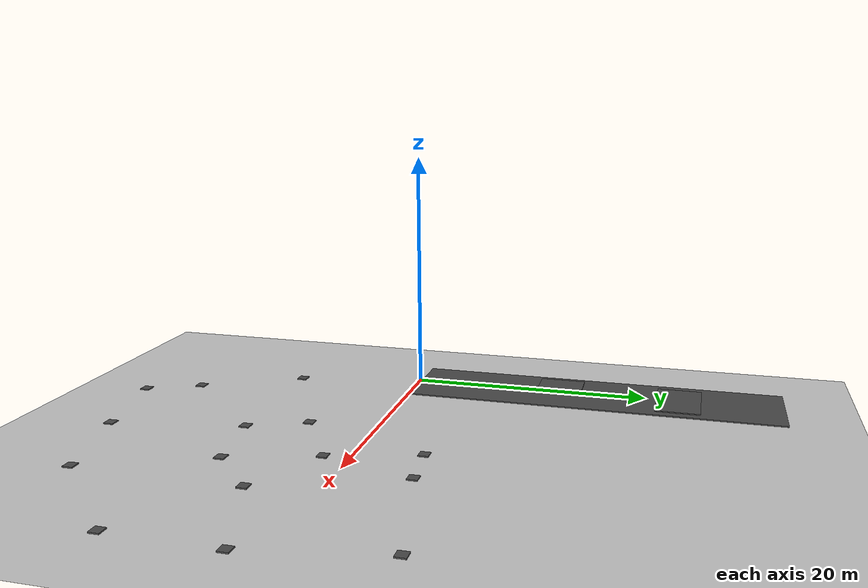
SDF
<sdf version="1.6">
 <world name="default">
  <model name="ground_plane">
   <static>1</static>
   <link name="link">
    <collision name="collision">
     <geometry><plane><normal>0 0 1</normal><size>100 100</size></plane></geometry>
     <surface><friction><ode><mu>100</mu><mu2>50</mu2></ode></friction></surface>
    </collision>
    <visual name="visual">
     <cast_shadows>0</cast_shadows>
     <geometry><plane><normal>0 0 1</normal><size>100 100</size></plane></geometry>
     <material>
      <script><uri>file://media/materials/scripts/gazebo.material</uri><name>Gazebo/Grey</name></script>
     </material>
    </visual>
   </link>
  </model>
  <model name="asphalt_plane_update3">
   <link name="link">
    <inertial>
     <inertia><ixx>0</ixx><ixy>0</ixy><ixz>0</ixz><iyy>0</iyy><iyz>0</iyz><izz>0</izz></inertia>
     <mass>0</mass>
    </inertial>
    <visual name="visual">
     <cast_shadows>0</cast_shadows>
     <geometry><box><size>31.1902 7.25075 0.1</size></box></geometry>
     <material>
      <script>
       <uri>model://asphalt_plane/materials/scripts</uri>
       <uri>model://asphalt_plane/materials/textures</uri>
       <name>vrc/asphalt</name>
      </script>
      <shader type="pixel"/>
     </material>
    </visual>
    <collision name="collision">
     <geometry><box><size>31.1902 7.25075 0.1</size></box></geometry>
     <surface>
      <friction>
       <ode><mu>1</mu><mu2>1</mu2><fdir1>0 0 0</fdir1><slip1>0</slip1><slip2>0</slip2></ode>
       <torsional>
        <coefficient>1</coefficient>
        <patch_radius>0</patch_radius>
        <surface_radius>0</surface_radius>
        <use_patch_radius>1</use_patch_radius>
        <ode><slip>0</slip></ode>
       </torsional>
      </friction>
      <bounce><restitution_coefficient>0</restitution_coefficient><threshold>1e+06</threshold></bounce>
      <contact>
       <collide_without_contact>0</collide_without_contact>
       <collide_without_contact_bitmask>1</collide_without_contact_bitmask>
       <collide_bitmask>1</collide_bitmask>
       <ode>
        <soft_cfm>0</soft_cfm>
        <soft_erp>0.2</soft_erp>
        <kp>1e+13</kp>
        <kd>1</kd>
        <max_vel>0.01</max_vel>
        <min_depth>0</min_depth>
       </ode>
       <bullet>
        <split_impulse>1</split_impulse>
        <split_impulse_penetration_threshold>-0.01</split_impulse_penetration_threshold>
        <soft_cfm>0</soft_cfm>
        <soft_erp>0.2</soft_erp>
        <kp>1e+13</kp>
        <kd>1</kd>
       </bullet>
      </contact>
     </surface>
    </collision>
   </link>
   <static>1</static>
   <pose>0.251899 15.8038 0 0.004648 -0.000195 -1.57</pose>
  </model>
  <model name="asphalt_plane_updateblue_clone_clone_clone">
   <link name="link">
    <inertial>
     <inertia><ixx>0</ixx><ixy>0</ixy><ixz>0</ixz><iyy>0</iyy><iyz>0</iyz><izz>0</izz></inertia>
     <mass>0</mass>
    </inertial>
    <visual name="visual">
     <cast_shadows>0</cast_shadows>
     <geometry><box><size>2.93785 3.83992 0.1</size></box></geometry>
     <material>
      <script>
       <uri>model://asphalt_plane/materials/scripts</uri>
       <uri>model://asphalt_plane/materials/textures</uri>
       <name>vrc/asphalt</name>
      </script>
      <shader type="pixel"><normal_map>__default__</normal_map></shader>
      <ambient>0.776 0.769 0.765 1</ambient>
      <diffuse>0.773 0.769 0.765 1</diffuse>
      <specular>0.773 0.769 0.765 1</specular>
      <emissive>0.773 0.769 0.765 1</emissive>
     </material>
    </visual>
    <collision name="collision">
     <geometry><box><size>2.93785 3.83992 0.1</size></box></geometry>
     <surface>
      <friction>
       <ode><mu>1</mu><mu2>1</mu2><fdir1>0 0 0</fdir1><slip1>0</slip1><slip2>0</slip2></ode>
       <torsional>
        <coefficient>1</coefficient>
        <patch_radius>0</patch_radius>
        <surface_radius>0</surface_radius>
        <use_patch_radius>1</use_patch_radius>
        <ode><slip>0</slip></ode>
       </torsional>
      </friction>
      <bounce><restitution_coefficient>0</restitution_coefficient><threshold>1e+06</threshold></bounce>
      <contact>
       <collide_without_contact>0</collide_without_contact>
       <collide_without_contact_bitmask>1</collide_without_contact_bitmask>
       <collide_bitmask>1</collide_bitmask>
       <ode>
        <soft_cfm>0</soft_cfm>
        <soft_erp>0.2</soft_erp>
        <kp>1e+13</kp>
        <kd>1</kd>
        <max_vel>0.01</max_vel>
        <min_depth>0</min_depth>
       </ode>
       <bullet>
        <split_impulse>1</split_impulse>
        <split_impulse_penetration_threshold>-0.01</split_impulse_penetration_threshold>
        <soft_cfm>0</soft_cfm>
        <soft_erp>0.2</soft_erp>
        <kp>1e+13</kp>
        <kd>1</kd>
       </bullet>
      </contact>
     </surface>
    </collision>
   </link>
   <static>1</static>
   <pose>-1.21261 12.6004 0.1 0 -0 0</pose>
  </model>
  <model name="asphalt_plane_updateblue_clone_clone_clone_clone">
   <link name="link">
    <inertial>
     <inertia><ixx>0</ixx><ixy>0</ixy><ixz>0</ixz><iyy>0</iyy><iyz>0</iyz><izz>0</izz></inertia>
     <mass>0</mass>
    </inertial>
    <visual name="visual">
     <cast_shadows>0</cast_shadows>
     <geometry><box><size>3.69865 5.53696 0.1</size></box></geometry>
     <material>
      <script>
       <uri>model://asphalt_plane/materials/scripts</uri>
       <uri>model://asphalt_plane/materials/textures</uri>
       <name>vrc/asphalt</name>
      </script>
      <shader type="pixel"><normal_map>__default__</normal_map></shader>
      <ambient>0.776 0.769 0.765 1</ambient>
      <diffuse>0.773 0.769 0.765 1</diffuse>
      <specular>0.773 0.769 0.765 1</specular>
      <emissive>0.773 0.769 0.765 1</emissive>
     </material>
    </visual>
    <collision name="collision">
     <geometry><box><size>3.69865 5.53696 0.1</size></box></geometry>
     <surface>
      <friction>
       <ode><mu>1</mu><mu2>1</mu2><fdir1>0 0 0</fdir1><slip1>0</slip1><slip2>0</slip2></ode>
       <torsional>
        <coefficient>1</coefficient>
        <patch_radius>0</patch_radius>
        <surface_radius>0</surface_radius>
        <use_patch_radius>1</use_patch_radius>
        <ode><slip>0</slip></ode>
       </torsional>
      </friction>
      <bounce><restitution_coefficient>0</restitution_coefficient><threshold>1e+06</threshold></bounce>
      <contact>
       <collide_without_contact>0</collide_without_contact>
       <collide_without_contact_bitmask>1</collide_without_contact_bitmask>
       <collide_bitmask>1</collide_bitmask>
       <ode>
        <soft_cfm>0</soft_cfm>
        <soft_erp>0.2</soft_erp>
        <kp>1e+13</kp>
        <kd>1</kd>
        <max_vel>0.01</max_vel>
        <min_depth>0</min_depth>
       </ode>
       <bullet>
        <split_impulse>1</split_impulse>
        <split_impulse_penetration_threshold>-0.01</split_impulse_penetration_threshold>
        <soft_cfm>0</soft_cfm>
        <soft_erp>0.2</soft_erp>
        <kp>1e+13</kp>
        <kd>1</kd>
       </bullet>
      </contact>
     </surface>
    </collision>
   </link>
   <static>1</static>
   <pose>0.337939 22.7775 0.1 0 0 -1.57683</pose>
  </model>
  <model name="asphalt_plane_updateblue_clone_clone_10">
   <link name="link">
    <inertial>
     <inertia><ixx>0</ixx><ixy>0</ixy><ixz>0</ixz><iyy>0</iyy><iyz>0</iyz><izz>0</izz></inertia>
     <mass>0</mass>
    </inertial>
    <visual name="visual">
     <cast_shadows>0</cast_shadows>
     <geometry><box><size>0.821257 0.814438 0.1</size></box></geometry>
     <material>
      <script>
       <uri>model://asphalt_plane/materials/scripts</uri>
       <uri>model://asphalt_plane/materials/textures</uri>
       <name>vrc/asphalt</name>
      </script>
      <shader type="pixel"><normal_map>__default__</normal_map></shader>
      <ambient>0 1 1 1</ambient>
      <diffuse>0 1 1 1</diffuse>
      <specular>0 1 1 1</specular>
      <emissive>0 0 0 1</emissive>
     </material>
    </visual>
    <collision name="collision">
     <geometry><box><size>0.821257 0.814438 0.1</size></box></geometry>
     <surface>
      <friction>
       <ode><mu>1</mu><mu2>1</mu2><fdir1>0 0 0</fdir1><slip1>0</slip1><slip2>0</slip2></ode>
       <torsional>
        <coefficient>1</coefficient>
        <patch_radius>0</patch_radius>
        <surface_radius>0</surface_radius>
        <use_patch_radius>1</use_patch_radius>
        <ode><slip>0</slip></ode>
       </torsional>
      </friction>
      <bounce><restitution_coefficient>0</restitution_coefficient><threshold>1e+06</threshold></bounce>
      <contact>
       <collide_without_contact>0</collide_without_contact>
       <collide_without_contact_bitmask>1</collide_without_contact_bitmask>
       <collide_bitmask>1</collide_bitmask>
       <ode>
        <soft_cfm>0</soft_cfm>
        <soft_erp>0.2</soft_erp>
        <kp>1e+13</kp>
        <kd>1</kd>
        <max_vel>0.01</max_vel>
        <min_depth>0</min_depth>
       </ode>
       <bullet>
        <split_impulse>1</split_impulse>
        <split_impulse_penetration_threshold>-0.01</split_impulse_penetration_threshold>
        <soft_cfm>0</soft_cfm>
        <soft_erp>0.2</soft_erp>
        <kp>1e+13</kp>
        <kd>1</kd>
       </bullet>
      </contact>
     </surface>
    </collision>
   </link>
   <static>1</static>
   <pose>6.21493 -18.4834 0 0 -0 0</pose>
  </model>
  <model name="asphalt_plane_updateblue_clone_clone_11">
   <link name="link">
    <inertial>
     <inertia><ixx>0</ixx><ixy>0</ixy><ixz>0</ixz><iyy>0</iyy><iyz>0</iyz><izz>0</izz></inertia>
     <mass>0</mass>
    </inertial>
    <visual name="visual">
     <cast_shadows>0</cast_shadows>
     <geometry><box><size>0.821257 0.814438 0.1</size></box></geometry>
     <material>
      <script>
       <uri>model://asphalt_plane/materials/scripts</uri>
       <uri>model://asphalt_plane/materials/textures</uri>
       <name>vrc/asphalt</name>
      </script>
      <shader type="pixel"><normal_map>__default__</normal_map></shader>
      <ambient>0 1 1 1</ambient>
      <diffuse>0 1 1 1</diffuse>
      <specular>0 1 1 1</specular>
      <emissive>0 0 0 1</emissive>
     </material>
    </visual>
    <collision name="collision">
     <geometry><box><size>0.821257 0.814438 0.1</size></box></geometry>
     <surface>
      <friction>
       <ode><mu>1</mu><mu2>1</mu2><fdir1>0 0 0</fdir1><slip1>0</slip1><slip2>0</slip2></ode>
       <torsional>
        <coefficient>1</coefficient>
        <patch_radius>0</patch_radius>
        <surface_radius>0</surface_radius>
        <use_patch_radius>1</use_patch_radius>
        <ode><slip>0</slip></ode>
       </torsional>
      </friction>
      <bounce><restitution_coefficient>0</restitution_coefficient><threshold>1e+06</threshold></bounce>
      <contact>
       <collide_without_contact>0</collide_without_contact>
       <collide_without_contact_bitmask>1</collide_without_contact_bitmask>
       <collide_bitmask>1</collide_bitmask>
       <ode>
        <soft_cfm>0</soft_cfm>
        <soft_erp>0.2</soft_erp>
        <kp>1e+13</kp>
        <kd>1</kd>
        <max_vel>0.01</max_vel>
        <min_depth>0</min_depth>
       </ode>
       <bullet>
        <split_impulse>1</split_impulse>
        <split_impulse_penetration_threshold>-0.01</split_impulse_penetration_threshold>
        <soft_cfm>0</soft_cfm>
        <soft_erp>0.2</soft_erp>
        <kp>1e+13</kp>
        <kd>1</kd>
       </bullet>
      </contact>
     </surface>
    </collision>
   </link>
   <static>1</static>
   <pose>8.19247 -22.7764 0 0 -0 0</pose>
  </model>
  <model name="asphalt_plane_updateblue_clone_clone_12">
   <link name="link">
    <inertial>
     <inertia><ixx>0</ixx><ixy>0</ixy><ixz>0</ixz><iyy>0</iyy><iyz>0</iyz><izz>0</izz></inertia>
     <mass>0</mass>
    </inertial>
    <visual name="visual">
     <cast_shadows>0</cast_shadows>
     <geometry><box><size>0.821257 0.814438 0.1</size></box></geometry>
     <material>
      <script>
       <uri>model://asphalt_plane/materials/scripts</uri>
       <uri>model://asphalt_plane/materials/textures</uri>
       <name>vrc/asphalt</name>
      </script>
      <shader type="pixel"><normal_map>__default__</normal_map></shader>
      <ambient>0 1 1 1</ambient>
      <diffuse>0 1 1 1</diffuse>
      <specular>0 1 1 1</specular>
      <emissive>0 0 0 1</emissive>
     </material>
    </visual>
    <collision name="collision">
     <geometry><box><size>0.821257 0.814438 0.1</size></box></geometry>
     <surface>
      <friction>
       <ode><mu>1</mu><mu2>1</mu2><fdir1>0 0 0</fdir1><slip1>0</slip1><slip2>0</slip2></ode>
       <torsional>
        <coefficient>1</coefficient>
        <patch_radius>0</patch_radius>
        <surface_radius>0</surface_radius>
        <use_patch_radius>1</use_patch_radius>
        <ode><slip>0</slip></ode>
       </torsional>
      </friction>
      <bounce><restitution_coefficient>0</restitution_coefficient><threshold>1e+06</threshold></bounce>
      <contact>
       <collide_without_contact>0</collide_without_contact>
       <collide_without_contact_bitmask>1</collide_without_contact_bitmask>
       <collide_bitmask>1</collide_bitmask>
       <ode>
        <soft_cfm>0</soft_cfm>
        <soft_erp>0.2</soft_erp>
        <kp>1e+13</kp>
        <kd>1</kd>
        <max_vel>0.01</max_vel>
        <min_depth>0</min_depth>
       </ode>
       <bullet>
        <split_impulse>1</split_impulse>
        <split_impulse_penetration_threshold>-0.01</split_impulse_penetration_threshold>
        <soft_cfm>0</soft_cfm>
        <soft_erp>0.2</soft_erp>
        <kp>1e+13</kp>
        <kd>1</kd>
       </bullet>
      </contact>
     </surface>
    </collision>
   </link>
   <static>1</static>
   <pose>16.1417 -21.0274 0 0 -0 0</pose>
  </model>
  <model name="asphalt_plane_updateblue_clone_clone_13">
   <link name="link">
    <inertial>
     <inertia><ixx>0</ixx><ixy>0</ixy><ixz>0</ixz><iyy>0</iyy><iyz>0</iyz><izz>0</izz></inertia>
     <mass>0</mass>
    </inertial>
    <visual name="visual">
     <cast_shadows>0</cast_shadows>
     <geometry><box><size>0.821257 0.814438 0.1</size></box></geometry>
     <material>
      <script>
       <uri>model://asphalt_plane/materials/scripts</uri>
       <uri>model://asphalt_plane/materials/textures</uri>
       <name>vrc/asphalt</name>
      </script>
      <shader type="pixel"><normal_map>__default__</normal_map></shader>
      <ambient>0 1 1 1</ambient>
      <diffuse>0 1 1 1</diffuse>
      <specular>0 1 1 1</specular>
      <emissive>0 0 0 1</emissive>
     </material>
    </visual>
    <collision name="collision">
     <geometry><box><size>0.821257 0.814438 0.1</size></box></geometry>
     <surface>
      <friction>
       <ode><mu>1</mu><mu2>1</mu2><fdir1>0 0 0</fdir1><slip1>0</slip1><slip2>0</slip2></ode>
       <torsional>
        <coefficient>1</coefficient>
        <patch_radius>0</patch_radius>
        <surface_radius>0</surface_radius>
        <use_patch_radius>1</use_patch_radius>
        <ode><slip>0</slip></ode>
       </torsional>
      </friction>
      <bounce><restitution_coefficient>0</restitution_coefficient><threshold>1e+06</threshold></bounce>
      <contact>
       <collide_without_contact>0</collide_without_contact>
       <collide_without_contact_bitmask>1</collide_without_contact_bitmask>
       <collide_bitmask>1</collide_bitmask>
       <ode>
        <soft_cfm>0</soft_cfm>
        <soft_erp>0.2</soft_erp>
        <kp>1e+13</kp>
        <kd>1</kd>
        <max_vel>0.01</max_vel>
        <min_depth>0</min_depth>
       </ode>
       <bullet>
        <split_impulse>1</split_impulse>
        <split_impulse_penetration_threshold>-0.01</split_impulse_penetration_threshold>
        <soft_cfm>0</soft_cfm>
        <soft_erp>0.2</soft_erp>
        <kp>1e+13</kp>
        <kd>1</kd>
       </bullet>
      </contact>
     </surface>
    </collision>
   </link>
   <static>1</static>
   <pose>20.1961 -9.18743 0 0 -0 0</pose>
  </model>
  <model name="asphalt_plane_updateblue_clone_clone_14">
   <link name="link">
    <inertial>
     <inertia><ixx>0</ixx><ixy>0</ixy><ixz>0</ixz><iyy>0</iyy><iyz>0</iyz><izz>0</izz></inertia>
     <mass>0</mass>
    </inertial>
    <visual name="visual">
     <cast_shadows>0</cast_shadows>
     <geometry><box><size>0.821257 0.814438 0.1</size></box></geometry>
     <material>
      <script>
       <uri>model://asphalt_plane/materials/scripts</uri>
       <uri>model://asphalt_plane/materials/textures</uri>
       <name>vrc/asphalt</name>
      </script>
      <shader type="pixel"><normal_map>__default__</normal_map></shader>
      <ambient>0 1 1 1</ambient>
      <diffuse>0 1 1 1</diffuse>
      <specular>0 1 1 1</specular>
      <emissive>0 0 0 1</emissive>
     </material>
    </visual>
    <collision name="collision">
     <geometry><box><size>0.821257 0.814438 0.1</size></box></geometry>
     <surface>
      <friction>
       <ode><mu>1</mu><mu2>1</mu2><fdir1>0 0 0</fdir1><slip1>0</slip1><slip2>0</slip2></ode>
       <torsional>
        <coefficient>1</coefficient>
        <patch_radius>0</patch_radius>
        <surface_radius>0</surface_radius>
        <use_patch_radius>1</use_patch_radius>
        <ode><slip>0</slip></ode>
       </torsional>
      </friction>
      <bounce><restitution_coefficient>0</restitution_coefficient><threshold>1e+06</threshold></bounce>
      <contact>
       <collide_without_contact>0</collide_without_contact>
       <collide_without_contact_bitmask>1</collide_without_contact_bitmask>
       <collide_bitmask>1</collide_bitmask>
       <ode>
        <soft_cfm>0</soft_cfm>
        <soft_erp>0.2</soft_erp>
        <kp>1e+13</kp>
        <kd>1</kd>
        <max_vel>0.01</max_vel>
        <min_depth>0</min_depth>
       </ode>
       <bullet>
        <split_impulse>1</split_impulse>
        <split_impulse_penetration_threshold>-0.01</split_impulse_penetration_threshold>
        <soft_cfm>0</soft_cfm>
        <soft_erp>0.2</soft_erp>
        <kp>1e+13</kp>
        <kd>1</kd>
       </bullet>
      </contact>
     </surface>
    </collision>
   </link>
   <static>1</static>
   <pose>16.1083 5.03897 0 0 -0 0</pose>
  </model>
  <model name="asphalt_plane_updateblue_clone_clone_15">
   <link name="link">
    <inertial>
     <inertia><ixx>0</ixx><ixy>0</ixy><ixz>0</ixz><iyy>0</iyy><iyz>0</iyz><izz>0</izz></inertia>
     <mass>0</mass>
    </inertial>
    <visual name="visual">
     <cast_shadows>0</cast_shadows>
     <geometry><box><size>0.821257 0.814438 0.1</size></box></geometry>
     <material>
      <script>
       <uri>model://asphalt_plane/materials/scripts</uri>
       <uri>model://asphalt_plane/materials/textures</uri>
       <name>vrc/asphalt</name>
      </script>
      <shader type="pixel"><normal_map>__default__</normal_map></shader>
      <ambient>0 1 1 1</ambient>
      <diffuse>0 1 1 1</diffuse>
      <specular>0 1 1 1</specular>
      <emissive>0 0 0 1</emissive>
     </material>
    </visual>
    <collision name="collision">
     <geometry><box><size>0.821257 0.814438 0.1</size></box></geometry>
     <surface>
      <friction>
       <ode><mu>1</mu><mu2>1</mu2><fdir1>0 0 0</fdir1><slip1>0</slip1><slip2>0</slip2></ode>
       <torsional>
        <coefficient>1</coefficient>
        <patch_radius>0</patch_radius>
        <surface_radius>0</surface_radius>
        <use_patch_radius>1</use_patch_radius>
        <ode><slip>0</slip></ode>
       </torsional>
      </friction>
      <bounce><restitution_coefficient>0</restitution_coefficient><threshold>1e+06</threshold></bounce>
      <contact>
       <collide_without_contact>0</collide_without_contact>
       <collide_without_contact_bitmask>1</collide_without_contact_bitmask>
       <collide_bitmask>1</collide_bitmask>
       <ode>
        <soft_cfm>0</soft_cfm>
        <soft_erp>0.2</soft_erp>
        <kp>1e+13</kp>
        <kd>1</kd>
        <max_vel>0.01</max_vel>
        <min_depth>0</min_depth>
       </ode>
       <bullet>
        <split_impulse>1</split_impulse>
        <split_impulse_penetration_threshold>-0.01</split_impulse_penetration_threshold>
        <soft_cfm>0</soft_cfm>
        <soft_erp>0.2</soft_erp>
        <kp>1e+13</kp>
        <kd>1</kd>
       </bullet>
      </contact>
     </surface>
    </collision>
   </link>
   <static>1</static>
   <pose>20.1704 5.43893 0 0 -0 0</pose>
  </model>
  <model name="asphalt_plane_updateblue_clone_clone_16">
   <link name="link">
    <inertial>
     <inertia><ixx>0</ixx><ixy>0</ixy><ixz>0</ixz><iyy>0</iyy><iyz>0</iyz><izz>0</izz></inertia>
     <mass>0</mass>
    </inertial>
    <visual name="visual">
     <cast_shadows>0</cast_shadows>
     <geometry><box><size>0.821257 0.814438 0.1</size></box></geometry>
     <material>
      <script>
       <uri>model://asphalt_plane/materials/scripts</uri>
       <uri>model://asphalt_plane/materials/textures</uri>
       <name>vrc/asphalt</name>
      </script>
      <shader type="pixel"><normal_map>__default__</normal_map></shader>
      <ambient>0 1 1 1</ambient>
      <diffuse>0 1 1 1</diffuse>
      <specular>0 1 1 1</specular>
      <emissive>0 0 0 1</emissive>
     </material>
    </visual>
    <collision name="collision">
     <geometry><box><size>0.821257 0.814438 0.1</size></box></geometry>
     <surface>
      <friction>
       <ode><mu>1</mu><mu2>1</mu2><fdir1>0 0 0</fdir1><slip1>0</slip1><slip2>0</slip2></ode>
       <torsional>
        <coefficient>1</coefficient>
        <patch_radius>0</patch_radius>
        <surface_radius>0</surface_radius>
        <use_patch_radius>1</use_patch_radius>
        <ode><slip>0</slip></ode>
       </torsional>
      </friction>
      <bounce><restitution_coefficient>0</restitution_coefficient><threshold>1e+06</threshold></bounce>
      <contact>
       <collide_without_contact>0</collide_without_contact>
       <collide_without_contact_bitmask>1</collide_without_contact_bitmask>
       <collide_bitmask>1</collide_bitmask>
       <ode>
        <soft_cfm>0</soft_cfm>
        <soft_erp>0.2</soft_erp>
        <kp>1e+13</kp>
        <kd>1</kd>
        <max_vel>0.01</max_vel>
        <min_depth>0</min_depth>
       </ode>
       <bullet>
        <split_impulse>1</split_impulse>
        <split_impulse_penetration_threshold>-0.01</split_impulse_penetration_threshold>
        <soft_cfm>0</soft_cfm>
        <soft_erp>0.2</soft_erp>
        <kp>1e+13</kp>
        <kd>1</kd>
       </bullet>
      </contact>
     </surface>
    </collision>
   </link>
   <static>1</static>
   <pose>24.2509 -5.33281 0 0 -0 0</pose>
  </model>
  <model name="asphalt_plane_updateblue_clone_clone_17">
   <link name="link">
    <inertial>
     <inertia><ixx>0</ixx><ixy>0</ixy><ixz>0</ixz><iyy>0</iyy><iyz>0</iyz><izz>0</izz></inertia>
     <mass>0</mass>
    </inertial>
    <visual name="visual">
     <cast_shadows>0</cast_shadows>
     <geometry><box><size>0.821257 0.814438 0.1</size></box></geometry>
     <material>
      <script>
       <uri>model://asphalt_plane/materials/scripts</uri>
       <uri>model://asphalt_plane/materials/textures</uri>
       <name>vrc/asphalt</name>
      </script>
      <shader type="pixel"><normal_map>__default__</normal_map></shader>
      <ambient>0 1 1 1</ambient>
      <diffuse>0 1 1 1</diffuse>
      <specular>0 1 1 1</specular>
      <emissive>0 0 0 1</emissive>
     </material>
    </visual>
    <collision name="collision">
     <geometry><box><size>0.821257 0.814438 0.1</size></box></geometry>
     <surface>
      <friction>
       <ode><mu>1</mu><mu2>1</mu2><fdir1>0 0 0</fdir1><slip1>0</slip1><slip2>0</slip2></ode>
       <torsional>
        <coefficient>1</coefficient>
        <patch_radius>0</patch_radius>
        <surface_radius>0</surface_radius>
        <use_patch_radius>1</use_patch_radius>
        <ode><slip>0</slip></ode>
       </torsional>
      </friction>
      <bounce><restitution_coefficient>0</restitution_coefficient><threshold>1e+06</threshold></bounce>
      <contact>
       <collide_without_contact>0</collide_without_contact>
       <collide_without_contact_bitmask>1</collide_without_contact_bitmask>
       <collide_bitmask>1</collide_bitmask>
       <ode>
        <soft_cfm>0</soft_cfm>
        <soft_erp>0.2</soft_erp>
        <kp>1e+13</kp>
        <kd>1</kd>
        <max_vel>0.01</max_vel>
        <min_depth>0</min_depth>
       </ode>
       <bullet>
        <split_impulse>1</split_impulse>
        <split_impulse_penetration_threshold>-0.01</split_impulse_penetration_threshold>
        <soft_cfm>0</soft_cfm>
        <soft_erp>0.2</soft_erp>
        <kp>1e+13</kp>
        <kd>1</kd>
       </bullet>
      </contact>
     </surface>
    </collision>
   </link>
   <static>1</static>
   <pose>12.183 -5.64765 0 0 -0 0</pose>
  </model>
  <model name="asphalt_plane_updateblue_clone_clone_18">
   <link name="link">
    <inertial>
     <inertia><ixx>0</ixx><ixy>0</ixy><ixz>0</ixz><iyy>0</iyy><iyz>0</iyz><izz>0</izz></inertia>
     <mass>0</mass>
    </inertial>
    <visual name="visual">
     <cast_shadows>0</cast_shadows>
     <geometry><box><size>0.821257 0.814438 0.1</size></box></geometry>
     <material>
      <script>
       <uri>model://asphalt_plane/materials/scripts</uri>
       <uri>model://asphalt_plane/materials/textures</uri>
       <name>vrc/asphalt</name>
      </script>
      <shader type="pixel"><normal_map>__default__</normal_map></shader>
      <ambient>0 1 1 1</ambient>
      <diffuse>0 1 1 1</diffuse>
      <specular>0 1 1 1</specular>
      <emissive>0 0 0 1</emissive>
     </material>
    </visual>
    <collision name="collision">
     <geometry><box><size>0.821257 0.814438 0.1</size></box></geometry>
     <surface>
      <friction>
       <ode><mu>1</mu><mu2>1</mu2><fdir1>0 0 0</fdir1><slip1>0</slip1><slip2>0</slip2></ode>
       <torsional>
        <coefficient>1</coefficient>
        <patch_radius>0</patch_radius>
        <surface_radius>0</surface_radius>
        <use_patch_radius>1</use_patch_radius>
        <ode><slip>0</slip></ode>
       </torsional>
      </friction>
      <bounce><restitution_coefficient>0</restitution_coefficient><threshold>1e+06</threshold></bounce>
      <contact>
       <collide_without_contact>0</collide_without_contact>
       <collide_without_contact_bitmask>1</collide_without_contact_bitmask>
       <collide_bitmask>1</collide_bitmask>
       <ode>
        <soft_cfm>0</soft_cfm>
        <soft_erp>0.2</soft_erp>
        <kp>1e+13</kp>
        <kd>1</kd>
        <max_vel>0.01</max_vel>
        <min_depth>0</min_depth>
       </ode>
       <bullet>
        <split_impulse>1</split_impulse>
        <split_impulse_penetration_threshold>-0.01</split_impulse_penetration_threshold>
        <soft_cfm>0</soft_cfm>
        <soft_erp>0.2</soft_erp>
        <kp>1e+13</kp>
        <kd>1</kd>
       </bullet>
      </contact>
     </surface>
    </collision>
   </link>
   <static>1</static>
   <pose>14.1407 -10.25 0 0 -0 0</pose>
  </model>
  <model name="asphalt_plane_updateblue_clone_clone_19">
   <link name="link">
    <inertial>
     <inertia><ixx>0</ixx><ixy>0</ixy><ixz>0</ixz><iyy>0</iyy><iyz>0</iyz><izz>0</izz></inertia>
     <mass>0</mass>
    </inertial>
    <visual name="visual">
     <cast_shadows>0</cast_shadows>
     <geometry><box><size>0.821257 0.814438 0.1</size></box></geometry>
     <material>
      <script>
       <uri>model://asphalt_plane/materials/scripts</uri>
       <uri>model://asphalt_plane/materials/textures</uri>
       <name>vrc/asphalt</name>
      </script>
      <shader type="pixel"><normal_map>__default__</normal_map></shader>
      <ambient>0 1 1 1</ambient>
      <diffuse>0 1 1 1</diffuse>
      <specular>0 1 1 1</specular>
      <emissive>0 0 0 1</emissive>
     </material>
    </visual>
    <collision name="collision">
     <geometry><box><size>0.821257 0.814438 0.1</size></box></geometry>
     <surface>
      <friction>
       <ode><mu>1</mu><mu2>1</mu2><fdir1>0 0 0</fdir1><slip1>0</slip1><slip2>0</slip2></ode>
       <torsional>
        <coefficient>1</coefficient>
        <patch_radius>0</patch_radius>
        <surface_radius>0</surface_radius>
        <use_patch_radius>1</use_patch_radius>
        <ode><slip>0</slip></ode>
       </torsional>
      </friction>
      <bounce><restitution_coefficient>0</restitution_coefficient><threshold>1e+06</threshold></bounce>
      <contact>
       <collide_without_contact>0</collide_without_contact>
       <collide_without_contact_bitmask>1</collide_without_contact_bitmask>
       <collide_bitmask>1</collide_bitmask>
       <ode>
        <soft_cfm>0</soft_cfm>
        <soft_erp>0.2</soft_erp>
        <kp>1e+13</kp>
        <kd>1</kd>
        <max_vel>0.01</max_vel>
        <min_depth>0</min_depth>
       </ode>
       <bullet>
        <split_impulse>1</split_impulse>
        <split_impulse_penetration_threshold>-0.01</split_impulse_penetration_threshold>
        <soft_cfm>0</soft_cfm>
        <soft_erp>0.2</soft_erp>
        <kp>1e+13</kp>
        <kd>1</kd>
       </bullet>
      </contact>
     </surface>
    </collision>
   </link>
   <static>1</static>
   <pose>18.133 -2.07498 0 0 -0 0</pose>
  </model>
  <model name="asphalt_plane_updateblue_clone_clone_20">
   <link name="link">
    <inertial>
     <inertia><ixx>0</ixx><ixy>0</ixy><ixz>0</ixz><iyy>0</iyy><iyz>0</iyz><izz>0</izz></inertia>
     <mass>0</mass>
    </inertial>
    <visual name="visual">
     <cast_shadows>0</cast_shadows>
     <geometry><box><size>0.821257 0.814438 0.1</size></box></geometry>
     <material>
      <script>
       <uri>model://asphalt_plane/materials/scripts</uri>
       <uri>model://asphalt_plane/materials/textures</uri>
       <name>vrc/asphalt</name>
      </script>
      <shader type="pixel"><normal_map>__default__</normal_map></shader>
      <ambient>0 1 1 1</ambient>
      <diffuse>0 1 1 1</diffuse>
      <specular>0 1 1 1</specular>
      <emissive>0 0 0 1</emissive>
     </material>
    </visual>
    <collision name="collision">
     <geometry><box><size>0.821257 0.814438 0.1</size></box></geometry>
     <surface>
      <friction>
       <ode><mu>1</mu><mu2>1</mu2><fdir1>0 0 0</fdir1><slip1>0</slip1><slip2>0</slip2></ode>
       <torsional>
        <coefficient>1</coefficient>
        <patch_radius>0</patch_radius>
        <surface_radius>0</surface_radius>
        <use_patch_radius>1</use_patch_radius>
        <ode><slip>0</slip></ode>
       </torsional>
      </friction>
      <bounce><restitution_coefficient>0</restitution_coefficient><threshold>1e+06</threshold></bounce>
      <contact>
       <collide_without_contact>0</collide_without_contact>
       <collide_without_contact_bitmask>1</collide_without_contact_bitmask>
       <collide_bitmask>1</collide_bitmask>
       <ode>
        <soft_cfm>0</soft_cfm>
        <soft_erp>0.2</soft_erp>
        <kp>1e+13</kp>
        <kd>1</kd>
        <max_vel>0.01</max_vel>
        <min_depth>0</min_depth>
       </ode>
       <bullet>
        <split_impulse>1</split_impulse>
        <split_impulse_penetration_threshold>-0.01</split_impulse_penetration_threshold>
        <soft_cfm>0</soft_cfm>
        <soft_erp>0.2</soft_erp>
        <kp>1e+13</kp>
        <kd>1</kd>
       </bullet>
      </contact>
     </surface>
    </collision>
   </link>
   <static>1</static>
   <pose>30.3979 7.86282 0 0 -0 0</pose>
  </model>
  <model name="asphalt_plane_updateblue_clone_clone_21">
   <link name="link">
    <inertial>
     <inertia><ixx>0</ixx><ixy>0</ixy><ixz>0</ixz><iyy>0</iyy><iyz>0</iyz><izz>0</izz></inertia>
     <mass>0</mass>
    </inertial>
    <visual name="visual">
     <cast_shadows>0</cast_shadows>
     <geometry><box><size>0.821257 0.814438 0.1</size></box></geometry>
     <material>
      <script>
       <uri>model://asphalt_plane/materials/scripts</uri>
       <uri>model://asphalt_plane/materials/textures</uri>
       <name>vrc/asphalt</name>
      </script>
      <shader type="pixel"><normal_map>__default__</normal_map></shader>
      <ambient>0 1 1 1</ambient>
      <diffuse>0 1 1 1</diffuse>
      <specular>0 1 1 1</specular>
      <emissive>0 0 0 1</emissive>
     </material>
    </visual>
    <collision name="collision">
     <geometry><box><size>0.821257 0.814438 0.1</size></box></geometry>
     <surface>
      <friction>
       <ode><mu>1</mu><mu2>1</mu2><fdir1>0 0 0</fdir1><slip1>0</slip1><slip2>0</slip2></ode>
       <torsional>
        <coefficient>1</coefficient>
        <patch_radius>0</patch_radius>
        <surface_radius>0</surface_radius>
        <use_patch_radius>1</use_patch_radius>
        <ode><slip>0</slip></ode>
       </torsional>
      </friction>
      <bounce><restitution_coefficient>0</restitution_coefficient><threshold>1e+06</threshold></bounce>
      <contact>
       <collide_without_contact>0</collide_without_contact>
       <collide_without_contact_bitmask>1</collide_without_contact_bitmask>
       <collide_bitmask>1</collide_bitmask>
       <ode>
        <soft_cfm>0</soft_cfm>
        <soft_erp>0.2</soft_erp>
        <kp>1e+13</kp>
        <kd>1</kd>
        <max_vel>0.01</max_vel>
        <min_depth>0</min_depth>
       </ode>
       <bullet>
        <split_impulse>1</split_impulse>
        <split_impulse_penetration_threshold>-0.01</split_impulse_penetration_threshold>
        <soft_cfm>0</soft_cfm>
        <soft_erp>0.2</soft_erp>
        <kp>1e+13</kp>
        <kd>1</kd>
       </bullet>
      </contact>
     </surface>
    </collision>
   </link>
   <static>1</static>
   <pose>32.3608 -2.39245 0 0 -0 0</pose>
  </model>
  <model name="asphalt_plane_updateblue_clone_clone_26">
   <link name="link">
    <inertial>
     <inertia><ixx>0</ixx><ixy>0</ixy><ixz>0</ixz><iyy>0</iyy><iyz>0</iyz><izz>0</izz></inertia>
     <mass>0</mass>
    </inertial>
    <visual name="visual">
     <cast_shadows>0</cast_shadows>
     <geometry><box><size>0.821257 0.814438 0.1</size></box></geometry>
     <material>
      <script>
       <uri>model://asphalt_plane/materials/scripts</uri>
       <uri>model://asphalt_plane/materials/textures</uri>
       <name>vrc/asphalt</name>
      </script>
      <shader type="pixel"><normal_map>__default__</normal_map></shader>
      <ambient>0 1 1 1</ambient>
      <diffuse>0 1 1 1</diffuse>
      <specular>0 1 1 1</specular>
      <emissive>0 0 0 1</emissive>
     </material>
    </visual>
    <collision name="collision">
     <geometry><box><size>0.821257 0.814438 0.1</size></box></geometry>
     <surface>
      <friction>
       <ode><mu>1</mu><mu2>1</mu2><fdir1>0 0 0</fdir1><slip1>0</slip1><slip2>0</slip2></ode>
       <torsional>
        <coefficient>1</coefficient>
        <patch_radius>0</patch_radius>
        <surface_radius>0</surface_radius>
        <use_patch_radius>1</use_patch_radius>
        <ode><slip>0</slip></ode>
       </torsional>
      </friction>
      <bounce><restitution_coefficient>0</restitution_coefficient><threshold>1e+06</threshold></bounce>
      <contact>
       <collide_without_contact>0</collide_without_contact>
       <collide_without_contact_bitmask>1</collide_without_contact_bitmask>
       <collide_bitmask>1</collide_bitmask>
       <ode>
        <soft_cfm>0</soft_cfm>
        <soft_erp>0.2</soft_erp>
        <kp>1e+13</kp>
        <kd>1</kd>
        <max_vel>0.01</max_vel>
        <min_depth>0</min_depth>
       </ode>
       <bullet>
        <split_impulse>1</split_impulse>
        <split_impulse_penetration_threshold>-0.01</split_impulse_penetration_threshold>
        <soft_cfm>0</soft_cfm>
        <soft_erp>0.2</soft_erp>
        <kp>1e+13</kp>
        <kd>1</kd>
       </bullet>
      </contact>
     </surface>
    </collision>
   </link>
   <static>1</static>
   <pose>24.1971 -18.863 0 0 -0 0</pose>
  </model>
  <model name="asphalt_plane_updateblue_clone_clone_27">
   <link name="link">
    <inertial>
     <inertia><ixx>0</ixx><ixy>0</ixy><ixz>0</ixz><iyy>0</iyy><iyz>0</iyz><izz>0</izz></inertia>
     <mass>0</mass>
    </inertial>
    <visual name="visual">
     <cast_shadows>0</cast_shadows>
     <geometry><box><size>0.821257 0.814438 0.1</size></box></geometry>
     <material>
      <script>
       <uri>model://asphalt_plane/materials/scripts</uri>
       <uri>model://asphalt_plane/materials/textures</uri>
       <name>vrc/asphalt</name>
      </script>
      <shader type="pixel"><normal_map>__default__</normal_map></shader>
      <ambient>0 1 1 1</ambient>
      <diffuse>0 1 1 1</diffuse>
      <specular>0 1 1 1</specular>
      <emissive>0 0 0 1</emissive>
     </material>
    </visual>
    <collision name="collision">
     <geometry><box><size>0.821257 0.814438 0.1</size></box></geometry>
     <surface>
      <friction>
       <ode><mu>1</mu><mu2>1</mu2><fdir1>0 0 0</fdir1><slip1>0</slip1><slip2>0</slip2></ode>
       <torsional>
        <coefficient>1</coefficient>
        <patch_radius>0</patch_radius>
        <surface_radius>0</surface_radius>
        <use_patch_radius>1</use_patch_radius>
        <ode><slip>0</slip></ode>
       </torsional>
      </friction>
      <bounce><restitution_coefficient>0</restitution_coefficient><threshold>1e+06</threshold></bounce>
      <contact>
       <collide_without_contact>0</collide_without_contact>
       <collide_without_contact_bitmask>1</collide_without_contact_bitmask>
       <collide_bitmask>1</collide_bitmask>
       <ode>
        <soft_cfm>0</soft_cfm>
        <soft_erp>0.2</soft_erp>
        <kp>1e+13</kp>
        <kd>1</kd>
        <max_vel>0.01</max_vel>
        <min_depth>0</min_depth>
       </ode>
       <bullet>
        <split_impulse>1</split_impulse>
        <split_impulse_penetration_threshold>-0.01</split_impulse_penetration_threshold>
        <soft_cfm>0</soft_cfm>
        <soft_erp>0.2</soft_erp>
        <kp>1e+13</kp>
        <kd>1</kd>
       </bullet>
      </contact>
     </surface>
    </collision>
   </link>
   <static>1</static>
   <pose>32.2054 -11.1305 0 0 -0 0</pose>
  </model>
  <model name="asphalt_plane_updateblue_clone_clone_28">
   <link name="link">
    <inertial>
     <inertia><ixx>0</ixx><ixy>0</ixy><ixz>0</ixz><iyy>0</iyy><iyz>0</iyz><izz>0</izz></inertia>
     <mass>0</mass>
    </inertial>
    <visual name="visual">
     <cast_shadows>0</cast_shadows>
     <geometry><box><size>0.821257 0.814438 0.1</size></box></geometry>
     <material>
      <script>
       <uri>model://asphalt_plane/materials/scripts</uri>
       <uri>model://asphalt_plane/materials/textures</uri>
       <name>vrc/asphalt</name>
      </script>
      <shader type="pixel"><normal_map>__default__</normal_map></shader>
      <ambient>0 1 1 1</ambient>
      <diffuse>0 1 1 1</diffuse>
      <specular>0 1 1 1</specular>
      <emissive>0 0 0 1</emissive>
     </material>
    </visual>
    <collision name="collision">
     <geometry><box><size>0.821257 0.814438 0.1</size></box></geometry>
     <surface>
      <friction>
       <ode><mu>1</mu><mu2>1</mu2><fdir1>0 0 0</fdir1><slip1>0</slip1><slip2>0</slip2></ode>
       <torsional>
        <coefficient>1</coefficient>
        <patch_radius>0</patch_radius>
        <surface_radius>0</surface_radius>
        <use_patch_radius>1</use_patch_radius>
        <ode><slip>0</slip></ode>
       </torsional>
      </friction>
      <bounce><restitution_coefficient>0</restitution_coefficient><threshold>1e+06</threshold></bounce>
      <contact>
       <collide_without_contact>0</collide_without_contact>
       <collide_without_contact_bitmask>1</collide_without_contact_bitmask>
       <collide_bitmask>1</collide_bitmask>
       <ode>
        <soft_cfm>0</soft_cfm>
        <soft_erp>0.2</soft_erp>
        <kp>1e+13</kp>
        <kd>1</kd>
        <max_vel>0.01</max_vel>
        <min_depth>0</min_depth>
       </ode>
       <bullet>
        <split_impulse>1</split_impulse>
        <split_impulse_penetration_threshold>-0.01</split_impulse_penetration_threshold>
        <soft_cfm>0</soft_cfm>
        <soft_erp>0.2</soft_erp>
        <kp>1e+13</kp>
        <kd>1</kd>
       </bullet>
      </contact>
     </surface>
    </collision>
   </link>
   <static>1</static>
   <pose>2.17639 -10.5013 0 0 -0 0</pose>
  </model>
 </world>
</sdf>
